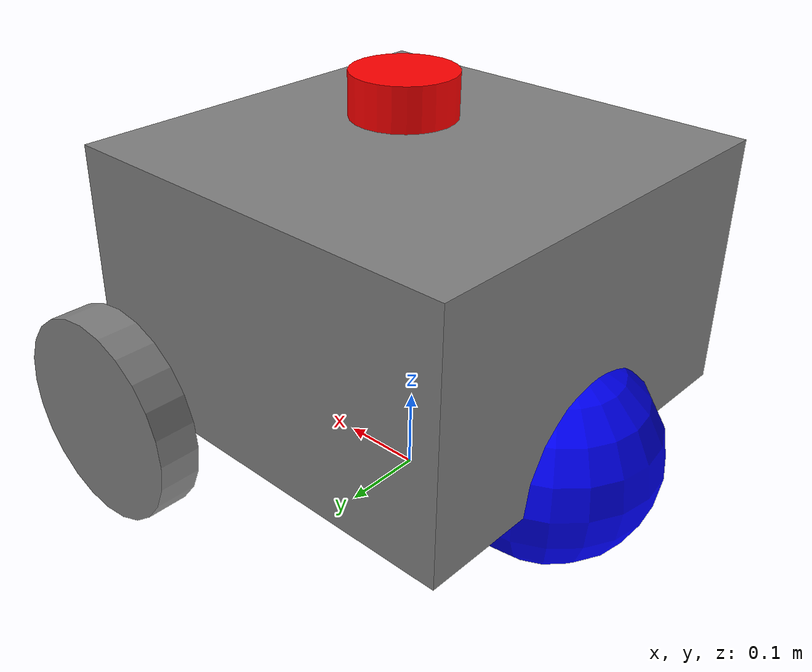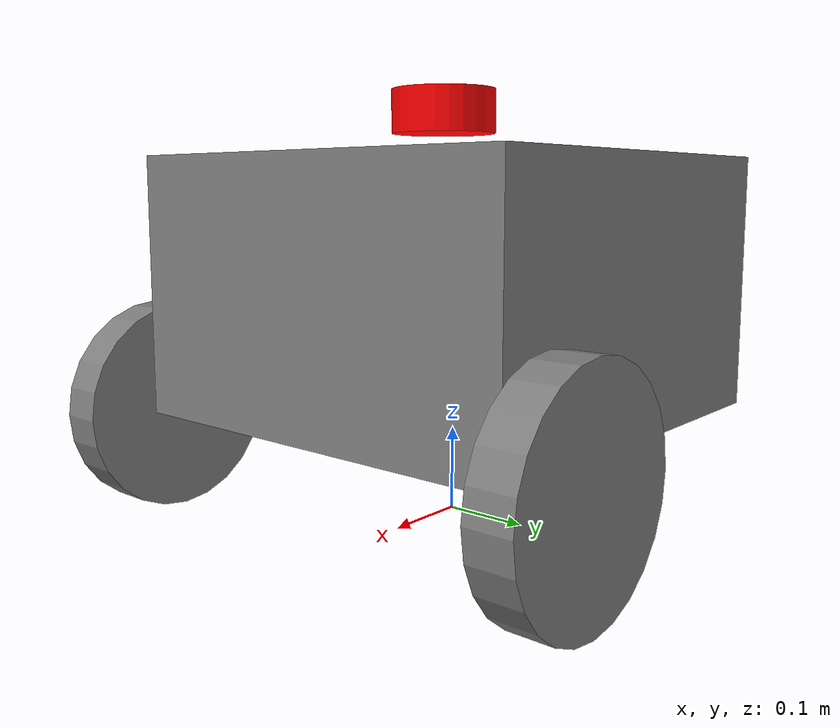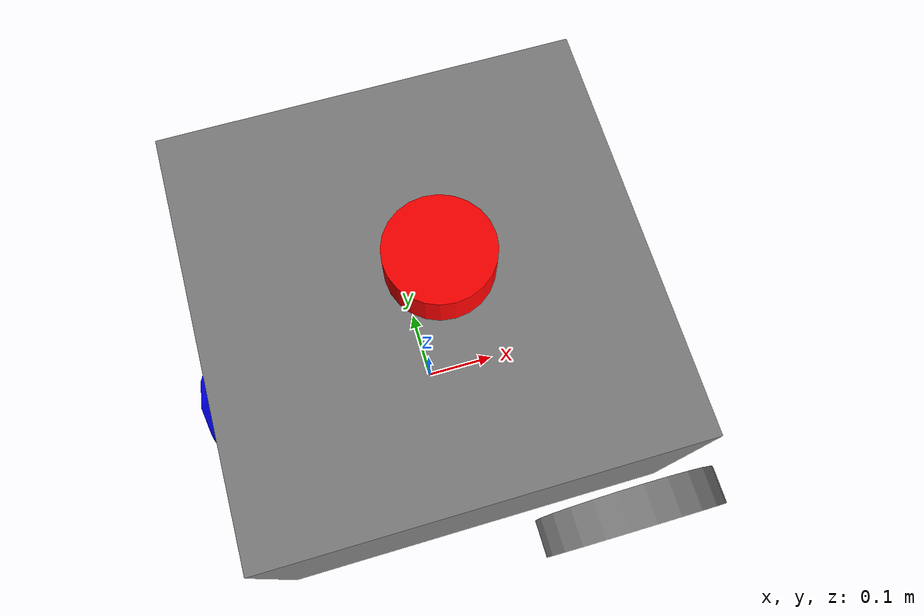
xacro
<?xml version="1.0"?>
<robot xmlns:xacro="http://www.ros.org/wiki/xacro" name="mobile_base">

    <material name="gray">
        <color rgba="0.5 0.5 0.5 1"/>
    </material>
    <material name="red">
        <color rgba="1 0 0 1"/>
    </material>
    <material name="blue">
        <color rgba="0 0 1 1"/>
    </material>

  <!-- Base Link -->
  <link name="base_link">
    <inertial>
      <origin xyz="0 0 0.275" rpy="0 0 0"/>
      <mass value="10.0"/>
      <inertia ixx="0.25" ixy="0.0" ixz="0.0" iyy="0.5" iyz="0.0" izz="0.05"/>
    </inertial>
    <visual>
      <origin xyz="0 0 0.275" rpy="0 0 0"/>
      <geometry>
        <box size="0.5 0.5 0.3"/>
      </geometry>
      <material name="gray"/>
    </visual>
    <collision>
      <origin xyz="0 0 0.275" rpy="0 0 0"/>
      <geometry>
        <box size="0.5 0.5 0.3"/>
      </geometry>
    </collision>
  </link>

  <!-- Laser Link -->
  <link name="laser_link">
    <visual>
      <origin xyz="0.01 0 0.0" rpy="0 0 0"/>
      <geometry>
        <cylinder length="0.05" radius="0.06"/>
      </geometry>
      <material name="red"/>
    </visual>
  </link>

  <!-- Joints -->
  <joint name="laser_joint" type="fixed">
    <parent link="base_link"/>
    <child link="laser_link"/>
    <origin xyz="0.01 0 0.475" rpy="0 0 0"/>
  </joint>

  <!-- Left Wheel -->
  <link name="left_wheel">
  <visual>
    <origin xyz="0 0 0" rpy="1.5708 0 0"/>
    <geometry>
      <cylinder radius="0.125" length="0.05"/>
    </geometry>
    <material name="gray"/>
  </visual>
  <collision>
    <origin xyz="0 0 0" rpy="1.5708 0 0"/>
    <geometry>
      <cylinder radius="0.125" length="0.05"/>
    </geometry>
  </collision>
</link>
  <joint name="left_wheel_hinge" type="continuous">
    <parent link="base_link"/>
    <child link="left_wheel"/>
    <origin xyz="0.2 0.29 0.125" rpy="0 0 0"/>
    <axis xyz="0 1 0"/>
  </joint>

  <!-- Right Wheel -->
    <link name="right_wheel">
        <visual>
            <origin xyz="0 0 0" rpy="1.5708 0 0"/>
            <geometry>
                <cylinder radius="0.125" length="0.05"/>
            </geometry>
            <material name="gray"/>
        </visual>
        <collision>
            <origin xyz="0 0 0" rpy="1.5708 0 0"/>
            <geometry>
                <cylinder radius="0.125" length="0.05"/>
            </geometry>
        </collision>
    </link>
  <joint name="right_wheel_hinge" type="continuous">
    <parent link="base_link"/>
    <child link="right_wheel"/>
    <origin xyz="0.2 -0.29 0.125" rpy="0 0 0"/>
    <axis xyz="0 1 0"/>
  </joint>

  <!-- Caster Wheel -->
    <link name="caster_wheel">
    <visual>
        <origin xyz="0 0 0" rpy="0 0 0"/>
        <geometry>
        <sphere radius="0.125"/>
        </geometry>
        <material name="blue"/>
    </visual>
    <collision>
        <origin xyz="0 0 0" rpy="0 0 0"/>
        <geometry>
        <sphere radius="0.125"/>
        </geometry>
    </collision>
    </link>

    <joint name="caster_joint" type="fixed">
    <parent link="base_link"/>
    <child link="caster_wheel"/>
    <origin xyz="-0.2 0 0.125" rpy="0 0 0"/>
    </joint>

</robot>
